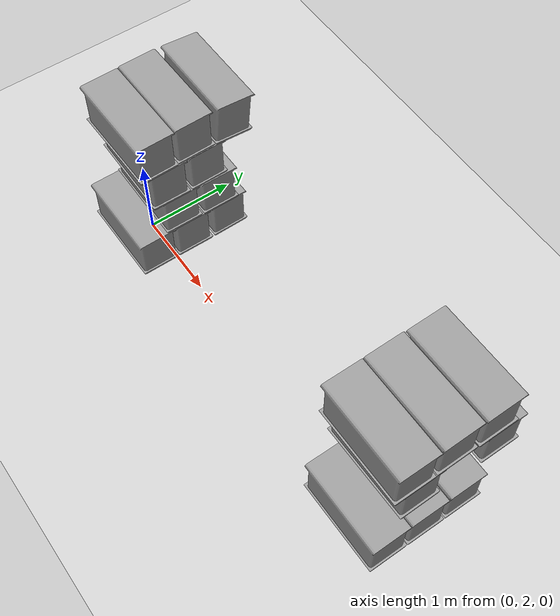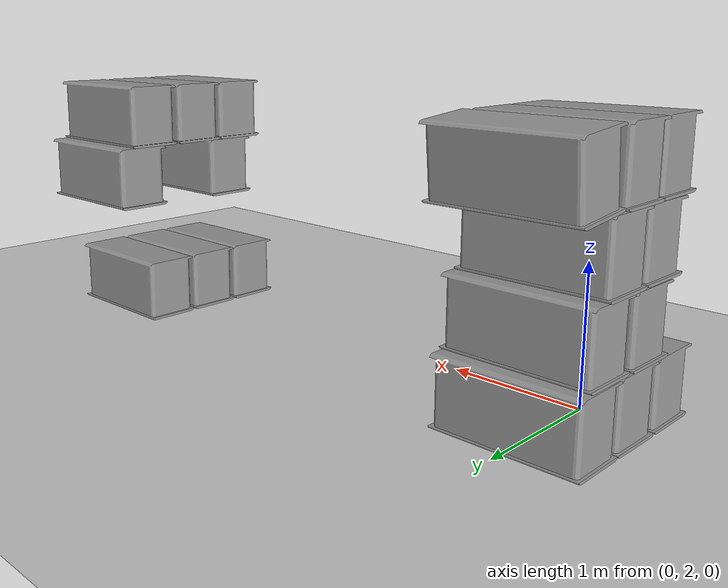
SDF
<sdf version="1.7">
 <world name="default">
  <model name="ground_plane">
   <static>1</static>
   <link name="link">
    <collision name="collision">
     <geometry><plane><normal>0 0 1</normal><size>100 100</size></plane></geometry>
     <surface><friction><ode><mu>100</mu><mu2>50</mu2></ode></friction></surface>
    </collision>
    <visual name="visual">
     <cast_shadows>0</cast_shadows>
     <geometry><plane><normal>0 0 1</normal><size>100 100</size></plane></geometry>
     <material>
      <script><uri>file://media/materials/scripts/gazebo.material</uri><name>Gazebo/Grey</name></script>
     </material>
    </visual>
   </link>
  </model>
  <model name="my_robot5">
   <link name="link_0">
    <inertial>
     <mass>1</mass>
     <inertia>
      <ixx>0.166667</ixx>
      <ixy>0</ixy>
      <ixz>0</ixz>
      <iyy>0.166667</iyy>
      <iyz>0</iyz>
      <izz>0.166667</izz>
     </inertia>
    </inertial>
    <visual name="visual">
     <geometry><mesh><uri>/home/cyun/cotton_box.stl</uri><scale>1 1 1</scale></mesh></geometry>
     <material>
      <lighting>1</lighting>
      <script><uri>file://media/materials/scripts/gazebo.material</uri><name>Gazebo/Grey</name></script>
      <shader type="pixel"><normal_map>__default__</normal_map></shader>
      <ambient>0.3 0.3 0.3 1</ambient>
      <diffuse>0.7 0.7 0.7 1</diffuse>
      <specular>0.01 0.01 0.01 1</specular>
      <emissive>0 0 0 1</emissive>
     </material>
    </visual>
    <collision name="collision">
     <geometry><mesh><uri>/home/cyun/cotton_box.stl</uri><scale>1 1 1</scale></mesh></geometry>
     <surface>
      <friction>
       <ode><mu>1</mu><mu2>1</mu2><fdir1>0 0 0</fdir1><slip1>0</slip1><slip2>0</slip2></ode>
       <torsional>
        <coefficient>1</coefficient>
        <patch_radius>0</patch_radius>
        <surface_radius>0</surface_radius>
        <use_patch_radius>1</use_patch_radius>
        <ode><slip>0</slip></ode>
       </torsional>
      </friction>
      <bounce><restitution_coefficient>0</restitution_coefficient><threshold>1e+06</threshold></bounce>
      <contact>
       <collide_without_contact>0</collide_without_contact>
       <collide_without_contact_bitmask>1</collide_without_contact_bitmask>
       <collide_bitmask>1</collide_bitmask>
       <ode>
        <soft_cfm>0</soft_cfm>
        <soft_erp>0.2</soft_erp>
        <kp>1e+13</kp>
        <kd>1</kd>
        <max_vel>0.01</max_vel>
        <min_depth>0</min_depth>
       </ode>
       <bullet>
        <split_impulse>1</split_impulse>
        <split_impulse_penetration_threshold>-0.01</split_impulse_penetration_threshold>
        <soft_cfm>0</soft_cfm>
        <soft_erp>0.2</soft_erp>
        <kp>1e+13</kp>
        <kd>1</kd>
       </bullet>
      </contact>
     </surface>
    </collision>
   </link>
   <static>0</static>
   <pose>0.002436 1.80378 0.01967 0.000155 8.7e-05 1.57416</pose>
  </model>
  <model name="my_robot6">
   <link name="link_0">
    <inertial>
     <mass>1</mass>
     <inertia>
      <ixx>0.166667</ixx>
      <ixy>0</ixy>
      <ixz>0</ixz>
      <iyy>0.166667</iyy>
      <iyz>0</iyz>
      <izz>0.166667</izz>
     </inertia>
    </inertial>
    <visual name="visual">
     <geometry><mesh><uri>/home/cyun/cotton_box.stl</uri><scale>1 1 1</scale></mesh></geometry>
     <material>
      <lighting>1</lighting>
      <script><uri>file://media/materials/scripts/gazebo.material</uri><name>Gazebo/Grey</name></script>
      <shader type="pixel"><normal_map>__default__</normal_map></shader>
      <ambient>0.3 0.3 0.3 1</ambient>
      <diffuse>0.7 0.7 0.7 1</diffuse>
      <specular>0.01 0.01 0.01 1</specular>
      <emissive>0 0 0 1</emissive>
     </material>
    </visual>
    <collision name="collision">
     <geometry><mesh><uri>/home/cyun/cotton_box.stl</uri><scale>1 1 1</scale></mesh></geometry>
     <surface>
      <friction>
       <ode><mu>1</mu><mu2>1</mu2><fdir1>0 0 0</fdir1><slip1>0</slip1><slip2>0</slip2></ode>
       <torsional>
        <coefficient>1</coefficient>
        <patch_radius>0</patch_radius>
        <surface_radius>0</surface_radius>
        <use_patch_radius>1</use_patch_radius>
        <ode><slip>0</slip></ode>
       </torsional>
      </friction>
      <bounce><restitution_coefficient>0</restitution_coefficient><threshold>1e+06</threshold></bounce>
      <contact>
       <collide_without_contact>0</collide_without_contact>
       <collide_without_contact_bitmask>1</collide_without_contact_bitmask>
       <collide_bitmask>1</collide_bitmask>
       <ode>
        <soft_cfm>0</soft_cfm>
        <soft_erp>0.2</soft_erp>
        <kp>1e+13</kp>
        <kd>1</kd>
        <max_vel>0.01</max_vel>
        <min_depth>0</min_depth>
       </ode>
       <bullet>
        <split_impulse>1</split_impulse>
        <split_impulse_penetration_threshold>-0.01</split_impulse_penetration_threshold>
        <soft_cfm>0</soft_cfm>
        <soft_erp>0.2</soft_erp>
        <kp>1e+13</kp>
        <kd>1</kd>
       </bullet>
      </contact>
     </surface>
    </collision>
   </link>
   <static>0</static>
   <pose>0.002568 2.25084 0.019393 -8.7e-05 0.000153 1.56432</pose>
  </model>
  <model name="my_robot7">
   <link name="link_0">
    <inertial>
     <mass>1</mass>
     <inertia>
      <ixx>0.166667</ixx>
      <ixy>0</ixy>
      <ixz>0</ixz>
      <iyy>0.166667</iyy>
      <iyz>0</iyz>
      <izz>0.166667</izz>
     </inertia>
    </inertial>
    <visual name="visual">
     <geometry><mesh><uri>/home/cyun/cotton_box.stl</uri><scale>1 1 1</scale></mesh></geometry>
     <material>
      <lighting>1</lighting>
      <script><uri>file://media/materials/scripts/gazebo.material</uri><name>Gazebo/Grey</name></script>
      <shader type="pixel"><normal_map>__default__</normal_map></shader>
      <ambient>0.3 0.3 0.3 1</ambient>
      <diffuse>0.7 0.7 0.7 1</diffuse>
      <specular>0.01 0.01 0.01 1</specular>
      <emissive>0 0 0 1</emissive>
     </material>
    </visual>
    <collision name="collision">
     <geometry><mesh><uri>/home/cyun/cotton_box.stl</uri><scale>1 1 1</scale></mesh></geometry>
     <surface>
      <friction>
       <ode><mu>1</mu><mu2>1</mu2><fdir1>0 0 0</fdir1><slip1>0</slip1><slip2>0</slip2></ode>
       <torsional>
        <coefficient>1</coefficient>
        <patch_radius>0</patch_radius>
        <surface_radius>0</surface_radius>
        <use_patch_radius>1</use_patch_radius>
        <ode><slip>0</slip></ode>
       </torsional>
      </friction>
      <bounce><restitution_coefficient>0</restitution_coefficient><threshold>1e+06</threshold></bounce>
      <contact>
       <collide_without_contact>0</collide_without_contact>
       <collide_without_contact_bitmask>1</collide_without_contact_bitmask>
       <collide_bitmask>1</collide_bitmask>
       <ode>
        <soft_cfm>0</soft_cfm>
        <soft_erp>0.2</soft_erp>
        <kp>1e+13</kp>
        <kd>1</kd>
        <max_vel>0.01</max_vel>
        <min_depth>0</min_depth>
       </ode>
       <bullet>
        <split_impulse>1</split_impulse>
        <split_impulse_penetration_threshold>-0.01</split_impulse_penetration_threshold>
        <soft_cfm>0</soft_cfm>
        <soft_erp>0.2</soft_erp>
        <kp>1e+13</kp>
        <kd>1</kd>
       </bullet>
      </contact>
     </surface>
    </collision>
   </link>
   <static>0</static>
   <pose>0.000808 2.70308 0.020218 0.000181 0.000708 1.57963</pose>
  </model>
  <model name="my_robot15">
   <link name="link_0">
    <inertial>
     <mass>1</mass>
     <inertia>
      <ixx>0.166667</ixx>
      <ixy>0</ixy>
      <ixz>0</ixz>
      <iyy>0.166667</iyy>
      <iyz>0</iyz>
      <izz>0.166667</izz>
     </inertia>
    </inertial>
    <visual name="visual">
     <geometry><mesh><uri>/home/cyun/cotton_box.stl</uri><scale>1 1 1</scale></mesh></geometry>
     <material>
      <lighting>1</lighting>
      <script><uri>file://media/materials/scripts/gazebo.material</uri><name>Gazebo/Grey</name></script>
      <shader type="pixel"><normal_map>__default__</normal_map></shader>
      <ambient>0.3 0.3 0.3 1</ambient>
      <diffuse>0.7 0.7 0.7 1</diffuse>
      <specular>0.01 0.01 0.01 1</specular>
      <emissive>0 0 0 1</emissive>
     </material>
    </visual>
    <collision name="collision">
     <geometry><mesh><uri>/home/cyun/cotton_box.stl</uri><scale>1 1 1</scale></mesh></geometry>
     <surface>
      <friction>
       <ode><mu>1</mu><mu2>1</mu2><fdir1>0 0 0</fdir1><slip1>0</slip1><slip2>0</slip2></ode>
       <torsional>
        <coefficient>1</coefficient>
        <patch_radius>0</patch_radius>
        <surface_radius>0</surface_radius>
        <use_patch_radius>1</use_patch_radius>
        <ode><slip>0</slip></ode>
       </torsional>
      </friction>
      <bounce><restitution_coefficient>0</restitution_coefficient><threshold>1e+06</threshold></bounce>
      <contact>
       <collide_without_contact>0</collide_without_contact>
       <collide_without_contact_bitmask>1</collide_without_contact_bitmask>
       <collide_bitmask>1</collide_bitmask>
       <ode>
        <soft_cfm>0</soft_cfm>
        <soft_erp>0.2</soft_erp>
        <kp>1e+13</kp>
        <kd>1</kd>
        <max_vel>0.01</max_vel>
        <min_depth>0</min_depth>
       </ode>
       <bullet>
        <split_impulse>1</split_impulse>
        <split_impulse_penetration_threshold>-0.01</split_impulse_penetration_threshold>
        <soft_cfm>0</soft_cfm>
        <soft_erp>0.2</soft_erp>
        <kp>1e+13</kp>
        <kd>1</kd>
       </bullet>
      </contact>
     </surface>
    </collision>
   </link>
   <static>0</static>
   <pose>-0.000568 2.14858 0.50959 0.000145 0.000343 1.56531</pose>
  </model>
  <model name="my_robot16">
   <link name="link_0">
    <inertial>
     <mass>1</mass>
     <inertia>
      <ixx>0.166667</ixx>
      <ixy>0</ixy>
      <ixz>0</ixz>
      <iyy>0.166667</iyy>
      <iyz>0</iyz>
      <izz>0.166667</izz>
     </inertia>
    </inertial>
    <visual name="visual">
     <geometry><mesh><uri>/home/cyun/cotton_box.stl</uri><scale>1 1 1</scale></mesh></geometry>
     <material>
      <lighting>1</lighting>
      <script><uri>file://media/materials/scripts/gazebo.material</uri><name>Gazebo/Grey</name></script>
      <shader type="pixel"><normal_map>__default__</normal_map></shader>
      <ambient>0.3 0.3 0.3 1</ambient>
      <diffuse>0.7 0.7 0.7 1</diffuse>
      <specular>0.01 0.01 0.01 1</specular>
      <emissive>0 0 0 1</emissive>
     </material>
    </visual>
    <collision name="collision">
     <geometry><mesh><uri>/home/cyun/cotton_box.stl</uri><scale>1 1 1</scale></mesh></geometry>
     <surface>
      <friction>
       <ode><mu>1</mu><mu2>1</mu2><fdir1>0 0 0</fdir1><slip1>0</slip1><slip2>0</slip2></ode>
       <torsional>
        <coefficient>1</coefficient>
        <patch_radius>0</patch_radius>
        <surface_radius>0</surface_radius>
        <use_patch_radius>1</use_patch_radius>
        <ode><slip>0</slip></ode>
       </torsional>
      </friction>
      <bounce><restitution_coefficient>0</restitution_coefficient><threshold>1e+06</threshold></bounce>
      <contact>
       <collide_without_contact>0</collide_without_contact>
       <collide_without_contact_bitmask>1</collide_without_contact_bitmask>
       <collide_bitmask>1</collide_bitmask>
       <ode>
        <soft_cfm>0</soft_cfm>
        <soft_erp>0.2</soft_erp>
        <kp>1e+13</kp>
        <kd>1</kd>
        <max_vel>0.01</max_vel>
        <min_depth>0</min_depth>
       </ode>
       <bullet>
        <split_impulse>1</split_impulse>
        <split_impulse_penetration_threshold>-0.01</split_impulse_penetration_threshold>
        <soft_cfm>0</soft_cfm>
        <soft_erp>0.2</soft_erp>
        <kp>1e+13</kp>
        <kd>1</kd>
       </bullet>
      </contact>
     </surface>
    </collision>
   </link>
   <static>0</static>
   <pose>0.009699 2.60436 0.510424 0.000181 0.0014 1.56585</pose>
  </model>
  <model name="my_robot23">
   <link name="link_0">
    <inertial>
     <mass>1</mass>
     <inertia>
      <ixx>0.166667</ixx>
      <ixy>0</ixy>
      <ixz>0</ixz>
      <iyy>0.166667</iyy>
      <iyz>0</iyz>
      <izz>0.166667</izz>
     </inertia>
    </inertial>
    <visual name="visual">
     <geometry><mesh><uri>/home/cyun/cotton_box.stl</uri><scale>1 1 1</scale></mesh></geometry>
     <material>
      <lighting>1</lighting>
      <script><uri>file://media/materials/scripts/gazebo.material</uri><name>Gazebo/Grey</name></script>
      <shader type="pixel"><normal_map>__default__</normal_map></shader>
      <ambient>0.3 0.3 0.3 1</ambient>
      <diffuse>0.7 0.7 0.7 1</diffuse>
      <specular>0.01 0.01 0.01 1</specular>
      <emissive>0 0 0 1</emissive>
     </material>
    </visual>
    <collision name="collision">
     <geometry><mesh><uri>/home/cyun/cotton_box.stl</uri><scale>1 1 1</scale></mesh></geometry>
     <surface>
      <friction>
       <ode><mu>1</mu><mu2>1</mu2><fdir1>0 0 0</fdir1><slip1>0</slip1><slip2>0</slip2></ode>
       <torsional>
        <coefficient>1</coefficient>
        <patch_radius>0</patch_radius>
        <surface_radius>0</surface_radius>
        <use_patch_radius>1</use_patch_radius>
        <ode><slip>0</slip></ode>
       </torsional>
      </friction>
      <bounce><restitution_coefficient>0</restitution_coefficient><threshold>1e+06</threshold></bounce>
      <contact>
       <collide_without_contact>0</collide_without_contact>
       <collide_without_contact_bitmask>1</collide_without_contact_bitmask>
       <collide_bitmask>1</collide_bitmask>
       <ode>
        <soft_cfm>0</soft_cfm>
        <soft_erp>0.2</soft_erp>
        <kp>1e+13</kp>
        <kd>1</kd>
        <max_vel>0.01</max_vel>
        <min_depth>0</min_depth>
       </ode>
       <bullet>
        <split_impulse>1</split_impulse>
        <split_impulse_penetration_threshold>-0.01</split_impulse_penetration_threshold>
        <soft_cfm>0</soft_cfm>
        <soft_erp>0.2</soft_erp>
        <kp>1e+13</kp>
        <kd>1</kd>
       </bullet>
      </contact>
     </surface>
    </collision>
   </link>
   <static>0</static>
   <pose>0.001278 2.04273 1.0007 0.002032 -0.000518 1.56439</pose>
  </model>
  <model name="my_robot24">
   <link name="link_0">
    <inertial>
     <mass>1</mass>
     <inertia>
      <ixx>0.166667</ixx>
      <ixy>0</ixy>
      <ixz>0</ixz>
      <iyy>0.166667</iyy>
      <iyz>0</iyz>
      <izz>0.166667</izz>
     </inertia>
    </inertial>
    <visual name="visual">
     <geometry><mesh><uri>/home/cyun/cotton_box.stl</uri><scale>1 1 1</scale></mesh></geometry>
     <material>
      <lighting>1</lighting>
      <script><uri>file://media/materials/scripts/gazebo.material</uri><name>Gazebo/Grey</name></script>
      <shader type="pixel"><normal_map>__default__</normal_map></shader>
      <ambient>0.3 0.3 0.3 1</ambient>
      <diffuse>0.7 0.7 0.7 1</diffuse>
      <specular>0.01 0.01 0.01 1</specular>
      <emissive>0 0 0 1</emissive>
     </material>
    </visual>
    <collision name="collision">
     <geometry><mesh><uri>/home/cyun/cotton_box.stl</uri><scale>1 1 1</scale></mesh></geometry>
     <surface>
      <friction>
       <ode><mu>1</mu><mu2>1</mu2><fdir1>0 0 0</fdir1><slip1>0</slip1><slip2>0</slip2></ode>
       <torsional>
        <coefficient>1</coefficient>
        <patch_radius>0</patch_radius>
        <surface_radius>0</surface_radius>
        <use_patch_radius>1</use_patch_radius>
        <ode><slip>0</slip></ode>
       </torsional>
      </friction>
      <bounce><restitution_coefficient>0</restitution_coefficient><threshold>1e+06</threshold></bounce>
      <contact>
       <collide_without_contact>0</collide_without_contact>
       <collide_without_contact_bitmask>1</collide_without_contact_bitmask>
       <collide_bitmask>1</collide_bitmask>
       <ode>
        <soft_cfm>0</soft_cfm>
        <soft_erp>0.2</soft_erp>
        <kp>1e+13</kp>
        <kd>1</kd>
        <max_vel>0.01</max_vel>
        <min_depth>0</min_depth>
       </ode>
       <bullet>
        <split_impulse>1</split_impulse>
        <split_impulse_penetration_threshold>-0.01</split_impulse_penetration_threshold>
        <soft_cfm>0</soft_cfm>
        <soft_erp>0.2</soft_erp>
        <kp>1e+13</kp>
        <kd>1</kd>
       </bullet>
      </contact>
     </surface>
    </collision>
   </link>
   <static>0</static>
   <pose>-0.00185 2.49039 1.00066 0.000441 0.001509 1.58078</pose>
  </model>
  <model name="my_robot30">
   <link name="link_0">
    <inertial>
     <mass>1</mass>
     <inertia>
      <ixx>0.166667</ixx>
      <ixy>0</ixy>
      <ixz>0</ixz>
      <iyy>0.166667</iyy>
      <iyz>0</iyz>
      <izz>0.166667</izz>
     </inertia>
    </inertial>
    <visual name="visual">
     <geometry><mesh><uri>/home/cyun/cotton_box.stl</uri><scale>1 1 1</scale></mesh></geometry>
     <material>
      <lighting>1</lighting>
      <script><uri>file://media/materials/scripts/gazebo.material</uri><name>Gazebo/Grey</name></script>
      <shader type="pixel"><normal_map>__default__</normal_map></shader>
      <ambient>0.3 0.3 0.3 1</ambient>
      <diffuse>0.7 0.7 0.7 1</diffuse>
      <specular>0.01 0.01 0.01 1</specular>
      <emissive>0 0 0 1</emissive>
     </material>
    </visual>
    <collision name="collision">
     <geometry><mesh><uri>/home/cyun/cotton_box.stl</uri><scale>1 1 1</scale></mesh></geometry>
     <surface>
      <friction>
       <ode><mu>1</mu><mu2>1</mu2><fdir1>0 0 0</fdir1><slip1>0</slip1><slip2>0</slip2></ode>
       <torsional>
        <coefficient>1</coefficient>
        <patch_radius>0</patch_radius>
        <surface_radius>0</surface_radius>
        <use_patch_radius>1</use_patch_radius>
        <ode><slip>0</slip></ode>
       </torsional>
      </friction>
      <bounce><restitution_coefficient>0</restitution_coefficient><threshold>1e+06</threshold></bounce>
      <contact>
       <collide_without_contact>0</collide_without_contact>
       <collide_without_contact_bitmask>1</collide_without_contact_bitmask>
       <collide_bitmask>1</collide_bitmask>
       <ode>
        <soft_cfm>0</soft_cfm>
        <soft_erp>0.2</soft_erp>
        <kp>1e+13</kp>
        <kd>1</kd>
        <max_vel>0.01</max_vel>
        <min_depth>0</min_depth>
       </ode>
       <bullet>
        <split_impulse>1</split_impulse>
        <split_impulse_penetration_threshold>-0.01</split_impulse_penetration_threshold>
        <soft_cfm>0</soft_cfm>
        <soft_erp>0.2</soft_erp>
        <kp>1e+13</kp>
        <kd>1</kd>
       </bullet>
      </contact>
     </surface>
    </collision>
   </link>
   <static>0</static>
   <pose>0.007534 1.93163 1.49111 0.001504 -0.000482 1.58693</pose>
  </model>
  <model name="my_robot31">
   <link name="link_0">
    <inertial>
     <mass>1</mass>
     <inertia>
      <ixx>0.166667</ixx>
      <ixy>0</ixy>
      <ixz>0</ixz>
      <iyy>0.166667</iyy>
      <iyz>0</iyz>
      <izz>0.166667</izz>
     </inertia>
    </inertial>
    <visual name="visual">
     <geometry><mesh><uri>/home/cyun/cotton_box.stl</uri><scale>1 1 1</scale></mesh></geometry>
     <material>
      <lighting>1</lighting>
      <script><uri>file://media/materials/scripts/gazebo.material</uri><name>Gazebo/Grey</name></script>
      <shader type="pixel"><normal_map>__default__</normal_map></shader>
      <ambient>0.3 0.3 0.3 1</ambient>
      <diffuse>0.7 0.7 0.7 1</diffuse>
      <specular>0.01 0.01 0.01 1</specular>
      <emissive>0 0 0 1</emissive>
     </material>
    </visual>
    <collision name="collision">
     <geometry><mesh><uri>/home/cyun/cotton_box.stl</uri><scale>1 1 1</scale></mesh></geometry>
     <surface>
      <friction>
       <ode><mu>1</mu><mu2>1</mu2><fdir1>0 0 0</fdir1><slip1>0</slip1><slip2>0</slip2></ode>
       <torsional>
        <coefficient>1</coefficient>
        <patch_radius>0</patch_radius>
        <surface_radius>0</surface_radius>
        <use_patch_radius>1</use_patch_radius>
        <ode><slip>0</slip></ode>
       </torsional>
      </friction>
      <bounce><restitution_coefficient>0</restitution_coefficient><threshold>1e+06</threshold></bounce>
      <contact>
       <collide_without_contact>0</collide_without_contact>
       <collide_without_contact_bitmask>1</collide_without_contact_bitmask>
       <collide_bitmask>1</collide_bitmask>
       <ode>
        <soft_cfm>0</soft_cfm>
        <soft_erp>0.2</soft_erp>
        <kp>1e+13</kp>
        <kd>1</kd>
        <max_vel>0.01</max_vel>
        <min_depth>0</min_depth>
       </ode>
       <bullet>
        <split_impulse>1</split_impulse>
        <split_impulse_penetration_threshold>-0.01</split_impulse_penetration_threshold>
        <soft_cfm>0</soft_cfm>
        <soft_erp>0.2</soft_erp>
        <kp>1e+13</kp>
        <kd>1</kd>
       </bullet>
      </contact>
     </surface>
    </collision>
   </link>
   <static>0</static>
   <pose>-0.006032 2.37171 1.4913 0.00118 0.000821 1.58531</pose>
  </model>
  <model name="my_robot32">
   <link name="link_0">
    <inertial>
     <mass>1</mass>
     <inertia>
      <ixx>0.166667</ixx>
      <ixy>0</ixy>
      <ixz>0</ixz>
      <iyy>0.166667</iyy>
      <iyz>0</iyz>
      <izz>0.166667</izz>
     </inertia>
    </inertial>
    <visual name="visual">
     <geometry><mesh><uri>/home/cyun/cotton_box.stl</uri><scale>1 1 1</scale></mesh></geometry>
     <material>
      <lighting>1</lighting>
      <script><uri>file://media/materials/scripts/gazebo.material</uri><name>Gazebo/Grey</name></script>
      <shader type="pixel"><normal_map>__default__</normal_map></shader>
      <ambient>0.3 0.3 0.3 1</ambient>
      <diffuse>0.7 0.7 0.7 1</diffuse>
      <specular>0.01 0.01 0.01 1</specular>
      <emissive>0 0 0 1</emissive>
     </material>
    </visual>
    <collision name="collision">
     <geometry><mesh><uri>/home/cyun/cotton_box.stl</uri><scale>1 1 1</scale></mesh></geometry>
     <surface>
      <friction>
       <ode><mu>1</mu><mu2>1</mu2><fdir1>0 0 0</fdir1><slip1>0</slip1><slip2>0</slip2></ode>
       <torsional>
        <coefficient>1</coefficient>
        <patch_radius>0</patch_radius>
        <surface_radius>0</surface_radius>
        <use_patch_radius>1</use_patch_radius>
        <ode><slip>0</slip></ode>
       </torsional>
      </friction>
      <bounce><restitution_coefficient>0</restitution_coefficient><threshold>1e+06</threshold></bounce>
      <contact>
       <collide_without_contact>0</collide_without_contact>
       <collide_without_contact_bitmask>1</collide_without_contact_bitmask>
       <collide_bitmask>1</collide_bitmask>
       <ode>
        <soft_cfm>0</soft_cfm>
        <soft_erp>0.2</soft_erp>
        <kp>1e+13</kp>
        <kd>1</kd>
        <max_vel>0.01</max_vel>
        <min_depth>0</min_depth>
       </ode>
       <bullet>
        <split_impulse>1</split_impulse>
        <split_impulse_penetration_threshold>-0.01</split_impulse_penetration_threshold>
        <soft_cfm>0</soft_cfm>
        <soft_erp>0.2</soft_erp>
        <kp>1e+13</kp>
        <kd>1</kd>
       </bullet>
      </contact>
     </surface>
    </collision>
   </link>
   <static>0</static>
   <pose>0.001294 2.81487 1.47745 -0.000296 0.09856 1.57526</pose>
  </model>
  <model name="my_robot39">
   <link name="link_0">
    <inertial>
     <mass>1</mass>
     <inertia>
      <ixx>0.166667</ixx>
      <ixy>0</ixy>
      <ixz>0</ixz>
      <iyy>0.166667</iyy>
      <iyz>0</iyz>
      <izz>0.166667</izz>
     </inertia>
    </inertial>
    <visual name="visual">
     <geometry><mesh><uri>/home/cyun/cotton_box.stl</uri><scale>1 1 1</scale></mesh></geometry>
     <material>
      <lighting>1</lighting>
      <script><uri>file://media/materials/scripts/gazebo.material</uri><name>Gazebo/Grey</name></script>
      <shader type="pixel"><normal_map>__default__</normal_map></shader>
      <ambient>0.3 0.3 0.3 1</ambient>
      <diffuse>0.7 0.7 0.7 1</diffuse>
      <specular>0.01 0.01 0.01 1</specular>
      <emissive>0 0 0 1</emissive>
     </material>
    </visual>
    <collision name="collision">
     <geometry><mesh><uri>/home/cyun/cotton_box.stl</uri><scale>1 1 1</scale></mesh></geometry>
     <surface>
      <friction>
       <ode><mu>1</mu><mu2>1</mu2><fdir1>0 0 0</fdir1><slip1>0</slip1><slip2>0</slip2></ode>
       <torsional>
        <coefficient>1</coefficient>
        <patch_radius>0</patch_radius>
        <surface_radius>0</surface_radius>
        <use_patch_radius>1</use_patch_radius>
        <ode><slip>0</slip></ode>
       </torsional>
      </friction>
      <bounce><restitution_coefficient>0</restitution_coefficient><threshold>1e+06</threshold></bounce>
      <contact>
       <collide_without_contact>0</collide_without_contact>
       <collide_without_contact_bitmask>1</collide_without_contact_bitmask>
       <collide_bitmask>1</collide_bitmask>
       <ode>
        <soft_cfm>0</soft_cfm>
        <soft_erp>0.2</soft_erp>
        <kp>1e+13</kp>
        <kd>1</kd>
        <max_vel>0.01</max_vel>
        <min_depth>0</min_depth>
       </ode>
       <bullet>
        <split_impulse>1</split_impulse>
        <split_impulse_penetration_threshold>-0.01</split_impulse_penetration_threshold>
        <soft_cfm>0</soft_cfm>
        <soft_erp>0.2</soft_erp>
        <kp>1e+13</kp>
        <kd>1</kd>
       </bullet>
      </contact>
     </surface>
    </collision>
   </link>
   <static>0</static>
   <pose>4.00032 1.80508 0.019954 0 5e-06 1.57425</pose>
  </model>
  <model name="my_robot40">
   <link name="link_0">
    <inertial>
     <mass>1</mass>
     <inertia>
      <ixx>0.166667</ixx>
      <ixy>0</ixy>
      <ixz>0</ixz>
      <iyy>0.166667</iyy>
      <iyz>0</iyz>
      <izz>0.166667</izz>
     </inertia>
    </inertial>
    <visual name="visual">
     <geometry><mesh><uri>/home/cyun/cotton_box.stl</uri><scale>1 1 1</scale></mesh></geometry>
     <material>
      <lighting>1</lighting>
      <script><uri>file://media/materials/scripts/gazebo.material</uri><name>Gazebo/Grey</name></script>
      <shader type="pixel"><normal_map>__default__</normal_map></shader>
      <ambient>0.3 0.3 0.3 1</ambient>
      <diffuse>0.7 0.7 0.7 1</diffuse>
      <specular>0.01 0.01 0.01 1</specular>
      <emissive>0 0 0 1</emissive>
     </material>
    </visual>
    <collision name="collision">
     <geometry><mesh><uri>/home/cyun/cotton_box.stl</uri><scale>1 1 1</scale></mesh></geometry>
     <surface>
      <friction>
       <ode><mu>1</mu><mu2>1</mu2><fdir1>0 0 0</fdir1><slip1>0</slip1><slip2>0</slip2></ode>
       <torsional>
        <coefficient>1</coefficient>
        <patch_radius>0</patch_radius>
        <surface_radius>0</surface_radius>
        <use_patch_radius>1</use_patch_radius>
        <ode><slip>0</slip></ode>
       </torsional>
      </friction>
      <bounce><restitution_coefficient>0</restitution_coefficient><threshold>1e+06</threshold></bounce>
      <contact>
       <collide_without_contact>0</collide_without_contact>
       <collide_without_contact_bitmask>1</collide_without_contact_bitmask>
       <collide_bitmask>1</collide_bitmask>
       <ode>
        <soft_cfm>0</soft_cfm>
        <soft_erp>0.2</soft_erp>
        <kp>1e+13</kp>
        <kd>1</kd>
        <max_vel>0.01</max_vel>
        <min_depth>0</min_depth>
       </ode>
       <bullet>
        <split_impulse>1</split_impulse>
        <split_impulse_penetration_threshold>-0.01</split_impulse_penetration_threshold>
        <soft_cfm>0</soft_cfm>
        <soft_erp>0.2</soft_erp>
        <kp>1e+13</kp>
        <kd>1</kd>
       </bullet>
      </contact>
     </surface>
    </collision>
   </link>
   <static>0</static>
   <pose>4.00034 2.2509 0.02 1.3e-05 1.2e-05 1.56981</pose>
  </model>
  <model name="my_robot41">
   <link name="link_0">
    <inertial>
     <mass>1</mass>
     <inertia>
      <ixx>0.166667</ixx>
      <ixy>0</ixy>
      <ixz>0</ixz>
      <iyy>0.166667</iyy>
      <iyz>0</iyz>
      <izz>0.166667</izz>
     </inertia>
    </inertial>
    <visual name="visual">
     <geometry><mesh><uri>/home/cyun/cotton_box.stl</uri><scale>1 1 1</scale></mesh></geometry>
     <material>
      <lighting>1</lighting>
      <script><uri>file://media/materials/scripts/gazebo.material</uri><name>Gazebo/Grey</name></script>
      <shader type="pixel"><normal_map>__default__</normal_map></shader>
      <ambient>0.3 0.3 0.3 1</ambient>
      <diffuse>0.7 0.7 0.7 1</diffuse>
      <specular>0.01 0.01 0.01 1</specular>
      <emissive>0 0 0 1</emissive>
     </material>
    </visual>
    <collision name="collision">
     <geometry><mesh><uri>/home/cyun/cotton_box.stl</uri><scale>1 1 1</scale></mesh></geometry>
     <surface>
      <friction>
       <ode><mu>1</mu><mu2>1</mu2><fdir1>0 0 0</fdir1><slip1>0</slip1><slip2>0</slip2></ode>
       <torsional>
        <coefficient>1</coefficient>
        <patch_radius>0</patch_radius>
        <surface_radius>0</surface_radius>
        <use_patch_radius>1</use_patch_radius>
        <ode><slip>0</slip></ode>
       </torsional>
      </friction>
      <bounce><restitution_coefficient>0</restitution_coefficient><threshold>1e+06</threshold></bounce>
      <contact>
       <collide_without_contact>0</collide_without_contact>
       <collide_without_contact_bitmask>1</collide_without_contact_bitmask>
       <collide_bitmask>1</collide_bitmask>
       <ode>
        <soft_cfm>0</soft_cfm>
        <soft_erp>0.2</soft_erp>
        <kp>1e+13</kp>
        <kd>1</kd>
        <max_vel>0.01</max_vel>
        <min_depth>0</min_depth>
       </ode>
       <bullet>
        <split_impulse>1</split_impulse>
        <split_impulse_penetration_threshold>-0.01</split_impulse_penetration_threshold>
        <soft_cfm>0</soft_cfm>
        <soft_erp>0.2</soft_erp>
        <kp>1e+13</kp>
        <kd>1</kd>
       </bullet>
      </contact>
     </surface>
    </collision>
   </link>
   <static>0</static>
   <pose>4.00037 2.70185 0.019888 9e-06 2e-05 1.57072</pose>
  </model>
  <model name="my_robot57">
   <link name="link_0">
    <inertial>
     <mass>1</mass>
     <inertia>
      <ixx>0.166667</ixx>
      <ixy>0</ixy>
      <ixz>0</ixz>
      <iyy>0.166667</iyy>
      <iyz>0</iyz>
      <izz>0.166667</izz>
     </inertia>
    </inertial>
    <visual name="visual">
     <geometry><mesh><uri>/home/cyun/cotton_box.stl</uri><scale>1 1 1</scale></mesh></geometry>
     <material>
      <lighting>1</lighting>
      <script><uri>file://media/materials/scripts/gazebo.material</uri><name>Gazebo/Grey</name></script>
      <shader type="pixel"><normal_map>__default__</normal_map></shader>
      <ambient>0.3 0.3 0.3 1</ambient>
      <diffuse>0.7 0.7 0.7 1</diffuse>
      <specular>0.01 0.01 0.01 1</specular>
      <emissive>0 0 0 1</emissive>
     </material>
    </visual>
    <collision name="collision">
     <geometry><mesh><uri>/home/cyun/cotton_box.stl</uri><scale>1 1 1</scale></mesh></geometry>
     <surface>
      <friction>
       <ode><mu>1</mu><mu2>1</mu2><fdir1>0 0 0</fdir1><slip1>0</slip1><slip2>0</slip2></ode>
       <torsional>
        <coefficient>1</coefficient>
        <patch_radius>0</patch_radius>
        <surface_radius>0</surface_radius>
        <use_patch_radius>1</use_patch_radius>
        <ode><slip>0</slip></ode>
       </torsional>
      </friction>
      <bounce><restitution_coefficient>0</restitution_coefficient><threshold>1e+06</threshold></bounce>
      <contact>
       <collide_without_contact>0</collide_without_contact>
       <collide_without_contact_bitmask>1</collide_without_contact_bitmask>
       <collide_bitmask>1</collide_bitmask>
       <ode>
        <soft_cfm>0</soft_cfm>
        <soft_erp>0.2</soft_erp>
        <kp>1e+13</kp>
        <kd>1</kd>
        <max_vel>0.01</max_vel>
        <min_depth>0</min_depth>
       </ode>
       <bullet>
        <split_impulse>1</split_impulse>
        <split_impulse_penetration_threshold>-0.01</split_impulse_penetration_threshold>
        <soft_cfm>0</soft_cfm>
        <soft_erp>0.2</soft_erp>
        <kp>1e+13</kp>
        <kd>1</kd>
       </bullet>
      </contact>
     </surface>
    </collision>
   </link>
   <static>0</static>
   <pose>3.99798 2.04508 1.00004 -0.000114 0.000436 1.58018</pose>
  </model>
  <model name="my_robot59">
   <link name="link_0">
    <inertial>
     <mass>1</mass>
     <inertia>
      <ixx>0.166667</ixx>
      <ixy>0</ixy>
      <ixz>0</ixz>
      <iyy>0.166667</iyy>
      <iyz>0</iyz>
      <izz>0.166667</izz>
     </inertia>
    </inertial>
    <visual name="visual">
     <geometry><mesh><uri>/home/cyun/cotton_box.stl</uri><scale>1 1 1</scale></mesh></geometry>
     <material>
      <lighting>1</lighting>
      <script><uri>file://media/materials/scripts/gazebo.material</uri><name>Gazebo/Grey</name></script>
      <shader type="pixel"><normal_map>__default__</normal_map></shader>
      <ambient>0.3 0.3 0.3 1</ambient>
      <diffuse>0.7 0.7 0.7 1</diffuse>
      <specular>0.01 0.01 0.01 1</specular>
      <emissive>0 0 0 1</emissive>
     </material>
    </visual>
    <collision name="collision">
     <geometry><mesh><uri>/home/cyun/cotton_box.stl</uri><scale>1 1 1</scale></mesh></geometry>
     <surface>
      <friction>
       <ode><mu>1</mu><mu2>1</mu2><fdir1>0 0 0</fdir1><slip1>0</slip1><slip2>0</slip2></ode>
       <torsional>
        <coefficient>1</coefficient>
        <patch_radius>0</patch_radius>
        <surface_radius>0</surface_radius>
        <use_patch_radius>1</use_patch_radius>
        <ode><slip>0</slip></ode>
       </torsional>
      </friction>
      <bounce><restitution_coefficient>0</restitution_coefficient><threshold>1e+06</threshold></bounce>
      <contact>
       <collide_without_contact>0</collide_without_contact>
       <collide_without_contact_bitmask>1</collide_without_contact_bitmask>
       <collide_bitmask>1</collide_bitmask>
       <ode>
        <soft_cfm>0</soft_cfm>
        <soft_erp>0.2</soft_erp>
        <kp>1e+13</kp>
        <kd>1</kd>
        <max_vel>0.01</max_vel>
        <min_depth>0</min_depth>
       </ode>
       <bullet>
        <split_impulse>1</split_impulse>
        <split_impulse_penetration_threshold>-0.01</split_impulse_penetration_threshold>
        <soft_cfm>0</soft_cfm>
        <soft_erp>0.2</soft_erp>
        <kp>1e+13</kp>
        <kd>1</kd>
       </bullet>
      </contact>
     </surface>
    </collision>
   </link>
   <static>0</static>
   <pose>3.9996 2.9462 0.999992 -0 -5e-06 1.57514</pose>
  </model>
  <model name="my_robot64">
   <link name="link_0">
    <inertial>
     <mass>1</mass>
     <inertia>
      <ixx>0.166667</ixx>
      <ixy>0</ixy>
      <ixz>0</ixz>
      <iyy>0.166667</iyy>
      <iyz>0</iyz>
      <izz>0.166667</izz>
     </inertia>
    </inertial>
    <visual name="visual">
     <geometry><mesh><uri>/home/cyun/cotton_box.stl</uri><scale>1 1 1</scale></mesh></geometry>
     <material>
      <lighting>1</lighting>
      <script><uri>file://media/materials/scripts/gazebo.material</uri><name>Gazebo/Grey</name></script>
      <shader type="pixel"><normal_map>__default__</normal_map></shader>
      <ambient>0.3 0.3 0.3 1</ambient>
      <diffuse>0.7 0.7 0.7 1</diffuse>
      <specular>0.01 0.01 0.01 1</specular>
      <emissive>0 0 0 1</emissive>
     </material>
    </visual>
    <collision name="collision">
     <geometry><mesh><uri>/home/cyun/cotton_box.stl</uri><scale>1 1 1</scale></mesh></geometry>
     <surface>
      <friction>
       <ode><mu>1</mu><mu2>1</mu2><fdir1>0 0 0</fdir1><slip1>0</slip1><slip2>0</slip2></ode>
       <torsional>
        <coefficient>1</coefficient>
        <patch_radius>0</patch_radius>
        <surface_radius>0</surface_radius>
        <use_patch_radius>1</use_patch_radius>
        <ode><slip>0</slip></ode>
       </torsional>
      </friction>
      <bounce><restitution_coefficient>0</restitution_coefficient><threshold>1e+06</threshold></bounce>
      <contact>
       <collide_without_contact>0</collide_without_contact>
       <collide_without_contact_bitmask>1</collide_without_contact_bitmask>
       <collide_bitmask>1</collide_bitmask>
       <ode>
        <soft_cfm>0</soft_cfm>
        <soft_erp>0.2</soft_erp>
        <kp>1e+13</kp>
        <kd>1</kd>
        <max_vel>0.01</max_vel>
        <min_depth>0</min_depth>
       </ode>
       <bullet>
        <split_impulse>1</split_impulse>
        <split_impulse_penetration_threshold>-0.01</split_impulse_penetration_threshold>
        <soft_cfm>0</soft_cfm>
        <soft_erp>0.2</soft_erp>
        <kp>1e+13</kp>
        <kd>1</kd>
       </bullet>
      </contact>
     </surface>
    </collision>
   </link>
   <static>0</static>
   <pose>4.00066 1.93064 1.49006 6.7e-05 0.000315 1.57227</pose>
  </model>
  <model name="my_robot65">
   <link name="link_0">
    <inertial>
     <mass>1</mass>
     <inertia>
      <ixx>0.166667</ixx>
      <ixy>0</ixy>
      <ixz>0</ixz>
      <iyy>0.166667</iyy>
      <iyz>0</iyz>
      <izz>0.166667</izz>
     </inertia>
    </inertial>
    <visual name="visual">
     <geometry><mesh><uri>/home/cyun/cotton_box.stl</uri><scale>1 1 1</scale></mesh></geometry>
     <material>
      <lighting>1</lighting>
      <script><uri>file://media/materials/scripts/gazebo.material</uri><name>Gazebo/Grey</name></script>
      <shader type="pixel"><normal_map>__default__</normal_map></shader>
      <ambient>0.3 0.3 0.3 1</ambient>
      <diffuse>0.7 0.7 0.7 1</diffuse>
      <specular>0.01 0.01 0.01 1</specular>
      <emissive>0 0 0 1</emissive>
     </material>
    </visual>
    <collision name="collision">
     <geometry><mesh><uri>/home/cyun/cotton_box.stl</uri><scale>1 1 1</scale></mesh></geometry>
     <surface>
      <friction>
       <ode><mu>1</mu><mu2>1</mu2><fdir1>0 0 0</fdir1><slip1>0</slip1><slip2>0</slip2></ode>
       <torsional>
        <coefficient>1</coefficient>
        <patch_radius>0</patch_radius>
        <surface_radius>0</surface_radius>
        <use_patch_radius>1</use_patch_radius>
        <ode><slip>0</slip></ode>
       </torsional>
      </friction>
      <bounce><restitution_coefficient>0</restitution_coefficient><threshold>1e+06</threshold></bounce>
      <contact>
       <collide_without_contact>0</collide_without_contact>
       <collide_without_contact_bitmask>1</collide_without_contact_bitmask>
       <collide_bitmask>1</collide_bitmask>
       <ode>
        <soft_cfm>0</soft_cfm>
        <soft_erp>0.2</soft_erp>
        <kp>1e+13</kp>
        <kd>1</kd>
        <max_vel>0.01</max_vel>
        <min_depth>0</min_depth>
       </ode>
       <bullet>
        <split_impulse>1</split_impulse>
        <split_impulse_penetration_threshold>-0.01</split_impulse_penetration_threshold>
        <soft_cfm>0</soft_cfm>
        <soft_erp>0.2</soft_erp>
        <kp>1e+13</kp>
        <kd>1</kd>
       </bullet>
      </contact>
     </surface>
    </collision>
   </link>
   <static>0</static>
   <pose>3.99597 2.3776 1.48988 2.1e-05 0.000223 1.58173</pose>
  </model>
  <model name="my_robot66">
   <link name="link_0">
    <inertial>
     <mass>1</mass>
     <inertia>
      <ixx>0.166667</ixx>
      <ixy>0</ixy>
      <ixz>0</ixz>
      <iyy>0.166667</iyy>
      <iyz>0</iyz>
      <izz>0.166667</izz>
     </inertia>
    </inertial>
    <visual name="visual">
     <geometry><mesh><uri>/home/cyun/cotton_box.stl</uri><scale>1 1 1</scale></mesh></geometry>
     <material>
      <lighting>1</lighting>
      <script><uri>file://media/materials/scripts/gazebo.material</uri><name>Gazebo/Grey</name></script>
      <shader type="pixel"><normal_map>__default__</normal_map></shader>
      <ambient>0.3 0.3 0.3 1</ambient>
      <diffuse>0.7 0.7 0.7 1</diffuse>
      <specular>0.01 0.01 0.01 1</specular>
      <emissive>0 0 0 1</emissive>
     </material>
    </visual>
    <collision name="collision">
     <geometry><mesh><uri>/home/cyun/cotton_box.stl</uri><scale>1 1 1</scale></mesh></geometry>
     <surface>
      <friction>
       <ode><mu>1</mu><mu2>1</mu2><fdir1>0 0 0</fdir1><slip1>0</slip1><slip2>0</slip2></ode>
       <torsional>
        <coefficient>1</coefficient>
        <patch_radius>0</patch_radius>
        <surface_radius>0</surface_radius>
        <use_patch_radius>1</use_patch_radius>
        <ode><slip>0</slip></ode>
       </torsional>
      </friction>
      <bounce><restitution_coefficient>0</restitution_coefficient><threshold>1e+06</threshold></bounce>
      <contact>
       <collide_without_contact>0</collide_without_contact>
       <collide_without_contact_bitmask>1</collide_without_contact_bitmask>
       <collide_bitmask>1</collide_bitmask>
       <ode>
        <soft_cfm>0</soft_cfm>
        <soft_erp>0.2</soft_erp>
        <kp>1e+13</kp>
        <kd>1</kd>
        <max_vel>0.01</max_vel>
        <min_depth>0</min_depth>
       </ode>
       <bullet>
        <split_impulse>1</split_impulse>
        <split_impulse_penetration_threshold>-0.01</split_impulse_penetration_threshold>
        <soft_cfm>0</soft_cfm>
        <soft_erp>0.2</soft_erp>
        <kp>1e+13</kp>
        <kd>1</kd>
       </bullet>
      </contact>
     </surface>
    </collision>
   </link>
   <static>0</static>
   <pose>3.99884 2.82764 1.49 -5e-06 -1.6e-05 1.58024</pose>
  </model>
 </world>
</sdf>
